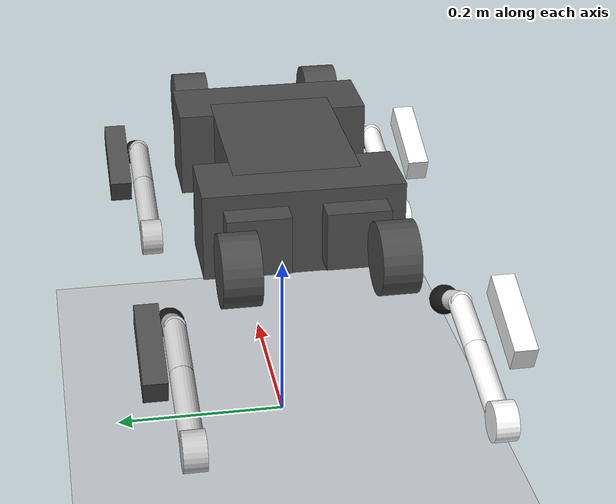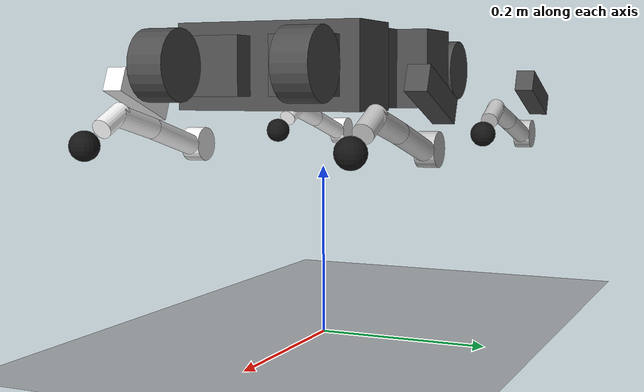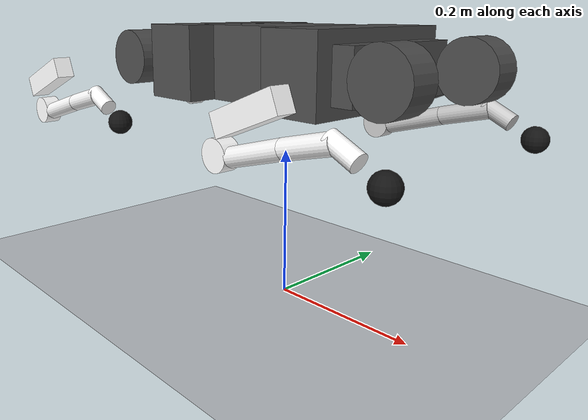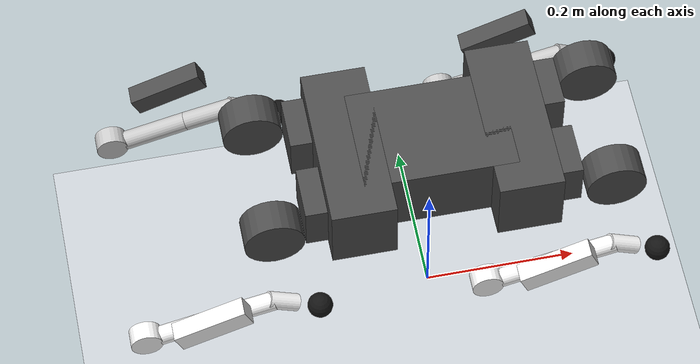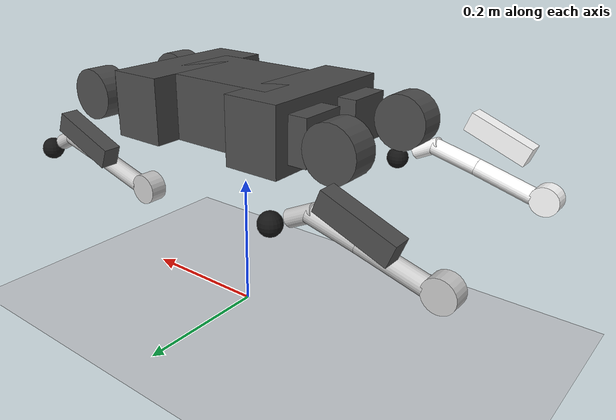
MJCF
<?xml version='1.0' encoding='utf-8'?>
<mujoco model="rs01_go2_sim2sim">
  <compiler angle="radian" />
  <worldbody>
    <geom name="ground" type="plane" size="20 20 0.1" rgba="0.78 0.80 0.82 1" friction="1.0 0.005 0.0001" condim="3" solref="0.0065 1.0" solimp="0.99 0.999 0.0001 0.5 2.0" margin="0.0" gap="0.0" />
    <light name="sun" pos="0 0 3" dir="0 0 -1" directional="true" />
    <body name="Trunk" pos="0.0 0.0 0.316">
      <inertial pos="0 8.5718e-09 -0.0073987" quat="0.5 0.5 -0.5 0.5" mass="5.2012" diaginertia="0.0139782 0.0099916 0.00900819" />
      <joint name="floating_base" type="free" limited="false" actuatorfrclimited="false" />
      <geom name="Trunk_center_collision" size="0.0973 0.0688 0.0475" type="box" rgba="0.298039 0.298039 0.298039 1" contype="1" conaffinity="0" friction="1.0 0.005 0.0001" condim="3" solref="0.0065 1.0" solimp="0.99 0.999 0.0001 0.5 2.0" margin="0.0" gap="0.0" />
      <geom name="Trunk_front_collision" size="0.041 0.1075 0.0475" pos="0.105 0 0" type="box" rgba="0.298039 0.298039 0.298039 1" contype="1" conaffinity="0" friction="1.0 0.005 0.0001" condim="3" solref="0.0065 1.0" solimp="0.99 0.999 0.0001 0.5 2.0" margin="0.0" gap="0.0" />
      <geom name="Trunk_rear_collision" size="0.041 0.1075 0.0475" pos="-0.105 0 0" type="box" rgba="0.298039 0.298039 0.298039 1" contype="1" conaffinity="0" friction="1.0 0.005 0.0001" condim="3" solref="0.0065 1.0" solimp="0.99 0.999 0.0001 0.5 2.0" margin="0.0" gap="0.0" />
      <geom size="0.015 0.01 0.001" pos="0 0 0.0255" type="box" rgba="0.792157 0.819608 0.933333 1" contype="1" conaffinity="0" friction="1.0 0.005 0.0001" condim="3" solref="0.0065 1.0" solimp="0.99 0.999 0.0001 0.5 2.0" margin="0.0" gap="0.0" />
      <body name="FR_hip_joint" pos="0.216 -0.06 0">
        <inertial pos="-0.00532402 0.0164328 -0.00013791" quat="0.569105 0.283438 0.320296 0.702277" mass="0.682634" diaginertia="0.000612522 0.000430441 0.000385975" />
        <joint name="FR_hip_joint" pos="0 0 0" axis="1 0 0" range="-1.0472 1.0472" actuatorfrcrange="-17 17" armature="0" damping="0" />
        <geom name="FR_hip_motor_collision" size="0.038 0.02" pos="0 -0.02 0" quat="0.707107 0.707107 0 0" type="cylinder" rgba="0.298039 0.298039 0.298039 1" contype="1" conaffinity="0" friction="1.0 0.005 0.0001" condim="3" solref="0.0065 1.0" solimp="0.99 0.999 0.0001 0.5 2.0" margin="0.0" gap="0.0" />
        <geom name="FR_hip_connector_collision" size="0.014 0.034 0.032" pos="-0.055 0.008 0" type="box" rgba="0.298039 0.298039 0.298039 1" contype="1" conaffinity="0" friction="1.0 0.005 0.0001" condim="3" solref="0.0065 1.0" solimp="0.99 0.999 0.0001 0.5 2.0" margin="0.0" gap="0.0" />
        <body name="FR_thigh_joint" pos="0 -0.08725 0">
          <inertial pos="-0.0166323 0.0262993 -0.00457224" quat="0.599363 0.381212 0.371827 0.597651" mass="0.8" diaginertia="0.00134321 0.00106856 0.000457835" />
          <joint name="FR_thigh_joint" pos="0 0 0" axis="0 1 0" range="-2.76229 2.29921" actuatorfrcrange="-17 17" armature="0" damping="0" />
          <geom name="FR_thigh_plate_collision" size="0.014 0.012 0.0475" pos="-0.0922095 -0.03 -0.0303711" quat="0.826711 0 0.562627 0" type="box" rgba="1 1 1 1" contype="1" conaffinity="0" friction="1.0 0.005 0.0001" condim="3" solref="0.0065 1.0" solimp="0.99 0.999 0.0001 0.5 2.0" margin="0.0" gap="0.0" />
          <body name="FR_calf_joint" pos="-0.1557 0 -0.090323">
            <inertial pos="0.116755 0.000243645 0.0184506" quat="0.520152 0.47943 0.479999 0.518835" mass="0.15" diaginertia="0.000675869 0.000657098 3.41983e-05" />
            <joint name="FR_calf_joint" pos="0 0 0" axis="0 1 0" range="0 1.91986" actuatorfrcrange="-17 17" armature="0" damping="0" />
            <geom name="FR_calf_knee_collision" size="0.02 0.0115" pos="-0.018 0 -3.32479e-05" quat="0.499538 0.499538 -0.500462 0.500462" type="cylinder" rgba="1 1 1 1" contype="1" conaffinity="0" friction="1.0 0.005 0.0001" condim="3" solref="0.0065 1.0" solimp="0.99 0.999 0.0001 0.5 2.0" margin="0.0" gap="0.0" />
            <geom name="FR_calf_upper_collision" size="0.012 0.0415" pos="0.0399796 0 0.0110739" quat="0.605564 0 -0.795796 0" type="cylinder" rgba="1 1 1 1" contype="1" conaffinity="0" friction="1.0 0.005 0.0001" condim="3" solref="0.0065 1.0" solimp="0.99 0.999 0.0001 0.5 2.0" margin="0.0" gap="0.0" />
            <geom name="FR_calf_middle_collision" size="0.012 0.034" pos="0.112444 0 0.0302077" quat="0.616252 0 -0.787549 0" type="cylinder" rgba="1 1 1 1" contype="1" conaffinity="0" friction="1.0 0.005 0.0001" condim="3" solref="0.0065 1.0" solimp="0.99 0.999 0.0001 0.5 2.0" margin="0.0" gap="0.0" />
            <geom name="FR_calf_lower_collision" size="0.011 0.02" pos="0.154939 0 0.0332862" quat="0.850258 0 -0.526367 0" type="cylinder" rgba="1 1 1 1" contype="1" conaffinity="0" friction="1.0 0.005 0.0001" condim="3" solref="0.0065 1.0" solimp="0.99 0.999 0.0001 0.5 2.0" margin="0.0" gap="0.0" />
            <geom size="0.016" pos="0.201985 0 0.0083731" rgba="0.08 0.08 0.08 1" contype="1" conaffinity="0" friction="1.0 0.005 0.0001" condim="3" solref="0.0065 1.0" solimp="0.99 0.999 0.0001 0.5 2.0" margin="0.0" gap="0.0" />
          </body>
        </body>
      </body>
      <body name="FL_hip_joint" pos="0.216 0.06 0">
        <inertial pos="-0.00532402 -0.0164328 0.00013791" quat="0.320296 0.702277 0.569105 0.283438" mass="0.682634" diaginertia="0.000612522 0.000430441 0.000385975" />
        <joint name="FL_hip_joint" pos="0 0 0" axis="1 0 0" range="-1.0472 1.0472" actuatorfrcrange="-17 17" armature="0" damping="0" />
        <geom name="FL_hip_motor_collision" size="0.038 0.02" pos="0 0.02 0" quat="0.707107 0.707107 0 0" type="cylinder" rgba="0.298039 0.298039 0.298039 1" contype="1" conaffinity="0" friction="1.0 0.005 0.0001" condim="3" solref="0.0065 1.0" solimp="0.99 0.999 0.0001 0.5 2.0" margin="0.0" gap="0.0" />
        <geom name="FL_hip_connector_collision" size="0.014 0.034 0.032" pos="-0.055 -0.008 0" type="box" rgba="0.298039 0.298039 0.298039 1" contype="1" conaffinity="0" friction="1.0 0.005 0.0001" condim="3" solref="0.0065 1.0" solimp="0.99 0.999 0.0001 0.5 2.0" margin="0.0" gap="0.0" />
        <body name="FL_thigh_joint" pos="0 0.08725 0">
          <inertial pos="-0.0166324 -0.0262993 -0.0045722" quat="0.597651 0.371826 0.381211 0.599364" mass="0.8" diaginertia="0.00134321 0.00106856 0.000457837" />
          <joint name="FL_thigh_joint" pos="0 0 0" axis="0 1 0" range="-2.76229 2.29921" actuatorfrcrange="-17 17" armature="0" damping="0" />
          <geom name="FL_thigh_plate_collision" size="0.014 0.012 0.0475" pos="-0.0922095 0.03 -0.0303711" quat="0.826711 0 0.562627 0" type="box" rgba="0.298039 0.298039 0.298039 1" contype="1" conaffinity="0" friction="1.0 0.005 0.0001" condim="3" solref="0.0065 1.0" solimp="0.99 0.999 0.0001 0.5 2.0" margin="0.0" gap="0.0" />
          <body name="FL_calf_joint" pos="-0.155698 0 -0.0903227">
            <inertial pos="0.116754 -0.000243661 0.0184505" quat="0.518835 0.479999 0.47943 0.520152" mass="0.15" diaginertia="0.000675869 0.000657099 3.41984e-05" />
            <joint name="FL_calf_joint" pos="0 0 0" axis="0 1 0" range="0 1.91986" actuatorfrcrange="-17 17" armature="0" damping="0" />
            <geom name="FL_calf_knee_collision" size="0.02 0.0115" pos="-0.018 0 -3.32479e-05" quat="0.499538 0.499538 -0.500462 0.500462" type="cylinder" rgba="0.780392 0.780392 0.780392 1" contype="1" conaffinity="0" friction="1.0 0.005 0.0001" condim="3" solref="0.0065 1.0" solimp="0.99 0.999 0.0001 0.5 2.0" margin="0.0" gap="0.0" />
            <geom name="FL_calf_upper_collision" size="0.012 0.0415" pos="0.0399796 0 0.0110739" quat="0.605564 0 -0.795796 0" type="cylinder" rgba="0.780392 0.780392 0.780392 1" contype="1" conaffinity="0" friction="1.0 0.005 0.0001" condim="3" solref="0.0065 1.0" solimp="0.99 0.999 0.0001 0.5 2.0" margin="0.0" gap="0.0" />
            <geom name="FL_calf_middle_collision" size="0.012 0.034" pos="0.112444 0 0.0302077" quat="0.616252 0 -0.787549 0" type="cylinder" rgba="0.780392 0.780392 0.780392 1" contype="1" conaffinity="0" friction="1.0 0.005 0.0001" condim="3" solref="0.0065 1.0" solimp="0.99 0.999 0.0001 0.5 2.0" margin="0.0" gap="0.0" />
            <geom name="FL_calf_lower_collision" size="0.011 0.02" pos="0.154939 0 0.0332862" quat="0.850258 0 -0.526367 0" type="cylinder" rgba="0.780392 0.780392 0.780392 1" contype="1" conaffinity="0" friction="1.0 0.005 0.0001" condim="3" solref="0.0065 1.0" solimp="0.99 0.999 0.0001 0.5 2.0" margin="0.0" gap="0.0" />
            <geom size="0.016" pos="0.201985 0 0.0083731" rgba="0.08 0.08 0.08 1" contype="1" conaffinity="0" friction="1.0 0.005 0.0001" condim="3" solref="0.0065 1.0" solimp="0.99 0.999 0.0001 0.5 2.0" margin="0.0" gap="0.0" />
          </body>
        </body>
      </body>
      <body name="RR_hip_joint" pos="-0.216 -0.06 0">
        <inertial pos="0.00532402 0.0164328 0.00013791" quat="0.702277 0.320296 0.283438 0.569105" mass="0.682634" diaginertia="0.000612522 0.000430441 0.000385975" />
        <joint name="RR_hip_joint" pos="0 0 0" axis="1 0 0" range="-1.0472 1.0472" actuatorfrcrange="-17 17" armature="0" damping="0" />
        <geom name="RR_hip_motor_collision" size="0.038 0.02" pos="0 -0.02 0" quat="0.707107 0.707107 0 0" type="cylinder" rgba="0.298039 0.298039 0.298039 1" contype="1" conaffinity="0" friction="1.0 0.005 0.0001" condim="3" solref="0.0065 1.0" solimp="0.99 0.999 0.0001 0.5 2.0" margin="0.0" gap="0.0" />
        <geom name="RR_hip_connector_collision" size="0.014 0.034 0.032" pos="0.055 0.008 0" type="box" rgba="0.298039 0.298039 0.298039 1" contype="1" conaffinity="0" friction="1.0 0.005 0.0001" condim="3" solref="0.0065 1.0" solimp="0.99 0.999 0.0001 0.5 2.0" margin="0.0" gap="0.0" />
        <body name="RR_thigh_joint" pos="0 -0.08725 0">
          <inertial pos="-0.0166323 0.0262993 -0.00457226" quat="0.599363 0.381212 0.371827 0.597651" mass="0.8" diaginertia="0.00134321 0.00106856 0.000457835" />
          <joint name="RR_thigh_joint" pos="0 0 0" axis="0 1 0" range="-2.76229 2.29921" actuatorfrcrange="-17 17" armature="0" damping="0" />
          <geom name="RR_thigh_plate_collision" size="0.014 0.012 0.0475" pos="-0.0922095 -0.03 -0.0303712" quat="0.826711 0 0.562627 0" type="box" rgba="1 1 1 1" contype="1" conaffinity="0" friction="1.0 0.005 0.0001" condim="3" solref="0.0065 1.0" solimp="0.99 0.999 0.0001 0.5 2.0" margin="0.0" gap="0.0" />
          <body name="RR_calf_joint" pos="-0.1557 0 -0.090323">
            <inertial pos="0.116755 0.000243645 0.0184506" quat="0.520152 0.47943 0.479999 0.518835" mass="0.15" diaginertia="0.000675869 0.000657098 3.41983e-05" />
            <joint name="RR_calf_joint" pos="0 0 0" axis="0 1 0" range="0 1.91986" actuatorfrcrange="-17 17" armature="0" damping="0" />
            <geom name="RR_calf_knee_collision" size="0.02 0.0115" pos="-0.018 0 -3.32522e-05" quat="0.499538 0.499538 -0.500462 0.500462" type="cylinder" rgba="1 1 1 1" contype="1" conaffinity="0" friction="1.0 0.005 0.0001" condim="3" solref="0.0065 1.0" solimp="0.99 0.999 0.0001 0.5 2.0" margin="0.0" gap="0.0" />
            <geom name="RR_calf_upper_collision" size="0.012 0.0415" pos="0.0399796 0 0.0110739" quat="0.605564 0 -0.795797 0" type="cylinder" rgba="1 1 1 1" contype="1" conaffinity="0" friction="1.0 0.005 0.0001" condim="3" solref="0.0065 1.0" solimp="0.99 0.999 0.0001 0.5 2.0" margin="0.0" gap="0.0" />
            <geom name="RR_calf_middle_collision" size="0.012 0.034" pos="0.112444 0 0.0302078" quat="0.616252 0 -0.787549 0" type="cylinder" rgba="1 1 1 1" contype="1" conaffinity="0" friction="1.0 0.005 0.0001" condim="3" solref="0.0065 1.0" solimp="0.99 0.999 0.0001 0.5 2.0" margin="0.0" gap="0.0" />
            <geom name="RR_calf_lower_collision" size="0.011 0.02" pos="0.154939 0 0.0332863" quat="0.850258 0 -0.526367 0" type="cylinder" rgba="1 1 1 1" contype="1" conaffinity="0" friction="1.0 0.005 0.0001" condim="3" solref="0.0065 1.0" solimp="0.99 0.999 0.0001 0.5 2.0" margin="0.0" gap="0.0" />
            <geom size="0.016" pos="0.201985 0 0.00837315" rgba="0.08 0.08 0.08 1" contype="1" conaffinity="0" friction="1.0 0.005 0.0001" condim="3" solref="0.0065 1.0" solimp="0.99 0.999 0.0001 0.5 2.0" margin="0.0" gap="0.0" />
          </body>
        </body>
      </body>
      <body name="RL_hip_joint" pos="-0.216 0.06 0">
        <inertial pos="0.00532402 -0.0164328 -0.00013791" quat="0.283438 0.569105 0.702277 0.320296" mass="0.682634" diaginertia="0.000612522 0.000430441 0.000385975" />
        <joint name="RL_hip_joint" pos="0 0 0" axis="1 0 0" range="-1.0472 1.0472" actuatorfrcrange="-17 17" armature="0" damping="0" />
        <geom name="RL_hip_motor_collision" size="0.038 0.02" pos="0 0.02 0" quat="0.707107 0.707107 0 0" type="cylinder" rgba="0.298039 0.298039 0.298039 1" contype="1" conaffinity="0" friction="1.0 0.005 0.0001" condim="3" solref="0.0065 1.0" solimp="0.99 0.999 0.0001 0.5 2.0" margin="0.0" gap="0.0" />
        <geom name="RL_hip_connector_collision" size="0.014 0.034 0.032" pos="0.055 -0.008 0" type="box" rgba="0.298039 0.298039 0.298039 1" contype="1" conaffinity="0" friction="1.0 0.005 0.0001" condim="3" solref="0.0065 1.0" solimp="0.99 0.999 0.0001 0.5 2.0" margin="0.0" gap="0.0" />
        <body name="RL_thigh_joint" pos="0 0.08725 0">
          <inertial pos="-0.0166324 -0.0262993 -0.0045722" quat="0.597651 0.371826 0.381211 0.599363" mass="0.8" diaginertia="0.00134321 0.00106856 0.000457837" />
          <joint name="RL_thigh_joint" pos="0 0 0" axis="0 1 0" range="-2.76229 2.29921" actuatorfrcrange="-17 17" armature="0" damping="0" />
          <geom name="RL_thigh_plate_collision" size="0.014 0.012 0.0475" pos="-0.0922095 0.03 -0.0303711" quat="0.826711 0 0.562627 0" type="box" rgba="0.298039 0.298039 0.298039 1" contype="1" conaffinity="0" friction="1.0 0.005 0.0001" condim="3" solref="0.0065 1.0" solimp="0.99 0.999 0.0001 0.5 2.0" margin="0.0" gap="0.0" />
          <body name="RL_calf_joint" pos="-0.1557 0 -0.090323">
            <inertial pos="0.116754 -0.000243661 0.0184505" quat="0.518835 0.479999 0.47943 0.520152" mass="0.15" diaginertia="0.000675869 0.000657099 3.41984e-05" />
            <joint name="RL_calf_joint" pos="0 0 0" axis="0 1 0" range="0 1.91986" actuatorfrcrange="-17 17" armature="0" damping="0" />
            <geom name="RL_calf_knee_collision" size="0.02 0.0115" pos="-0.018 0 -3.32522e-05" quat="0.499538 0.499538 -0.500462 0.500462" type="cylinder" rgba="0.780392 0.780392 0.780392 1" contype="1" conaffinity="0" friction="1.0 0.005 0.0001" condim="3" solref="0.0065 1.0" solimp="0.99 0.999 0.0001 0.5 2.0" margin="0.0" gap="0.0" />
            <geom name="RL_calf_upper_collision" size="0.012 0.0415" pos="0.0399796 0 0.0110739" quat="0.605564 0 -0.795797 0" type="cylinder" rgba="0.780392 0.780392 0.780392 1" contype="1" conaffinity="0" friction="1.0 0.005 0.0001" condim="3" solref="0.0065 1.0" solimp="0.99 0.999 0.0001 0.5 2.0" margin="0.0" gap="0.0" />
            <geom name="RL_calf_middle_collision" size="0.012 0.034" pos="0.112444 0 0.0302078" quat="0.616252 0 -0.787549 0" type="cylinder" rgba="0.780392 0.780392 0.780392 1" contype="1" conaffinity="0" friction="1.0 0.005 0.0001" condim="3" solref="0.0065 1.0" solimp="0.99 0.999 0.0001 0.5 2.0" margin="0.0" gap="0.0" />
            <geom name="RL_calf_lower_collision" size="0.011 0.02" pos="0.154939 0 0.0332863" quat="0.850258 0 -0.526367 0" type="cylinder" rgba="0.780392 0.780392 0.780392 1" contype="1" conaffinity="0" friction="1.0 0.005 0.0001" condim="3" solref="0.0065 1.0" solimp="0.99 0.999 0.0001 0.5 2.0" margin="0.0" gap="0.0" />
            <geom size="0.016" pos="0.201985 0 0.00837315" rgba="0.08 0.08 0.08 1" contype="1" conaffinity="0" friction="1.0 0.005 0.0001" condim="3" solref="0.0065 1.0" solimp="0.99 0.999 0.0001 0.5 2.0" margin="0.0" gap="0.0" />
          </body>
        </body>
      </body>
    </body>
  </worldbody>
<option timestep="0.0025" gravity="0 0 -9.81" integrator="implicitfast" solver="Newton" />
  <actuator>
    <motor name="FL_hip_joint_motor" joint="FL_hip_joint" gear="1" ctrllimited="false" />
    <motor name="FL_thigh_joint_motor" joint="FL_thigh_joint" gear="1" ctrllimited="false" />
    <motor name="FL_calf_joint_motor" joint="FL_calf_joint" gear="1" ctrllimited="false" />
    <motor name="FR_hip_joint_motor" joint="FR_hip_joint" gear="1" ctrllimited="false" />
    <motor name="FR_thigh_joint_motor" joint="FR_thigh_joint" gear="1" ctrllimited="false" />
    <motor name="FR_calf_joint_motor" joint="FR_calf_joint" gear="1" ctrllimited="false" />
    <motor name="RL_hip_joint_motor" joint="RL_hip_joint" gear="1" ctrllimited="false" />
    <motor name="RL_thigh_joint_motor" joint="RL_thigh_joint" gear="1" ctrllimited="false" />
    <motor name="RL_calf_joint_motor" joint="RL_calf_joint" gear="1" ctrllimited="false" />
    <motor name="RR_hip_joint_motor" joint="RR_hip_joint" gear="1" ctrllimited="false" />
    <motor name="RR_thigh_joint_motor" joint="RR_thigh_joint" gear="1" ctrllimited="false" />
    <motor name="RR_calf_joint_motor" joint="RR_calf_joint" gear="1" ctrllimited="false" />
  </actuator><custom>
    <text name="rs01_source_urdf_sha256" data="48b177e9977cc3644dd7a84433d82c3b6d9293e9fdc40c33daa35b4194dd11f4" />
    <numeric name="rs01_motor_step_s" data="0.0025" />
    <numeric name="rs01_integration_substeps" data="1" />
  </custom>
</mujoco>
